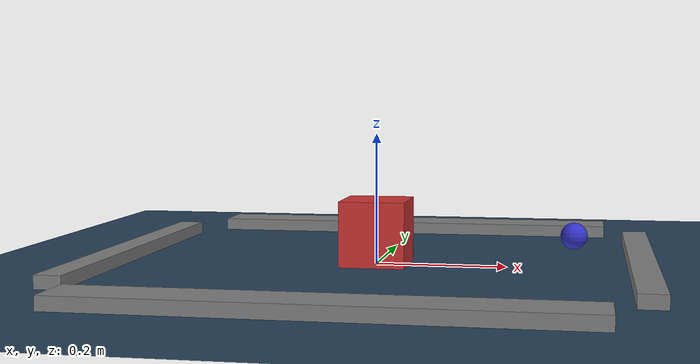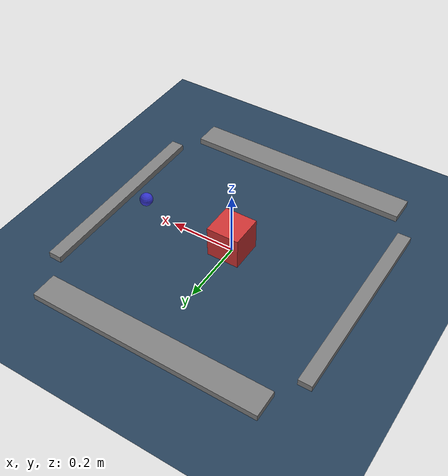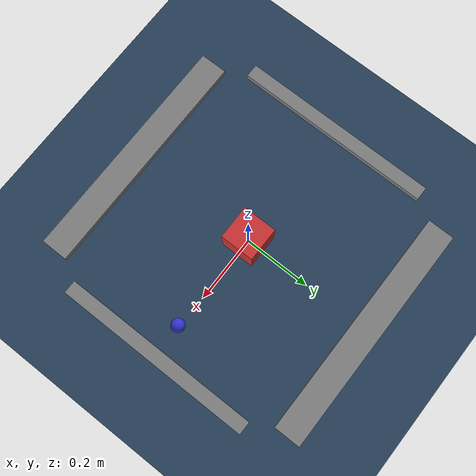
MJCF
<mujoco>

  <worldbody>
    <light pos="0 0 1.5" dir="0 0 -1" directional="true"/>
    <geom name="floor" size="0 0 0.05" type="plane" material="groundplane" friction=".5 0.005 0.001"  priority="2" condim="4"/>
  </worldbody>

    <worldbody>

        <!-- Define the environment -->

        <body name="case" pos="0 0 0.01">
          <geom name="gcase_a" type="box" size="0.02 0.3 0.01" pos=".4 0 0" />
          <geom name="gcase_b" type="box" size="0.02 0.3 0.01" pos="-.4 0 0" />
          <geom name="gcase_c" type="box" size="0.35 0.04 0.01" pos="0 .4 0" />
          <geom name="gcase_d" type="box" size="0.35 0.04 0.01" pos="0 -.4 0" />
        </body>

        <body name="cube" pos="0 0 .05">
          <freejoint/>
          <geom  name = "gcube_0" type="box" size="0.05 0.05 0.05" mass=".1" material="CubeMat" condim="4"  />
          <site name="sensor_box" />
        </body>

        <body name="ball" pos=".3 0 .05">
          <geom name="gball_0" type="sphere" size="0.02" mass="1." material="BallMat" friction=".5 0.005 0.001 " condim="4"  />
          <site name="sensor_ball" />
          <joint name="joint_x" type="slide" pos="0 0 0" axis="1 0 0"/>
          <joint name="joint_y" type="slide" pos="0 0 0" axis="0 1 0"/>
        </body>

    </worldbody>

    <actuator>
        <motor name="actuator_x" joint="joint_x" gear="1"/>
        <motor name="actuator_y" joint="joint_y" gear="1"/>
    </actuator>

    <asset>
        <!-- Materials for visualization -->
        <material name="MatPlane" rgba="0.8 0.9 0.8 1"/>
        <material name="CubeMat" rgba="0.8 0.2 0.2 1"/>
        <material name="BallMat" rgba="0.2 0.2 0.8 1"/>

    <texture type="skybox" builtin="gradient" rgb1="0.3 0.5 0.7" rgb2="0 0 0" width="512" height="3072"/>
    <texture type="2d" name="groundplane" builtin="checker" mark="edge" rgb1="0.2 0.3 0.4" rgb2="0.1 0.2 0.3"
      markrgb="0.8 0.8 0.8" width="300" height="300"/>
    <material name="groundplane" texture="groundplane" texuniform="true" texrepeat="5 5" reflectance="0.2"/>
    </asset>

      <visual>
        <headlight diffuse="0.6 0.6 0.6" ambient="0.3 0.3 0.3" specular="0 0 0"/>
        <rgba haze="0.15 0.25 0.35 1"/>
        <global azimuth="60" elevation="-20"/>
      </visual>

  <sensor>
      <velocimeter name="sensor_box" site="sensor_box"/>
      <velocimeter name="sensor_ball" site="sensor_ball"/>
  </sensor>

</mujoco>
